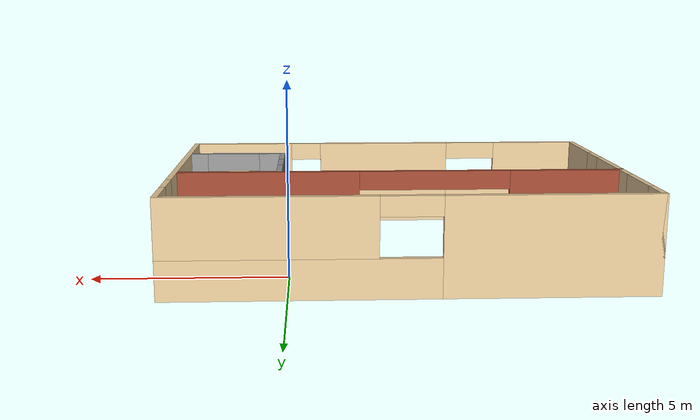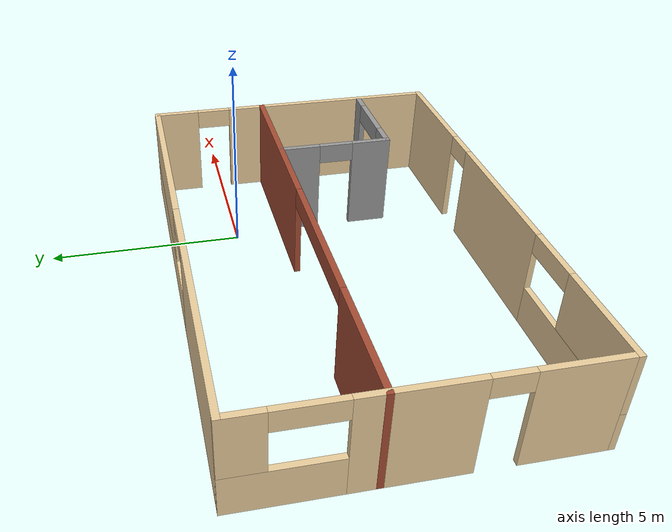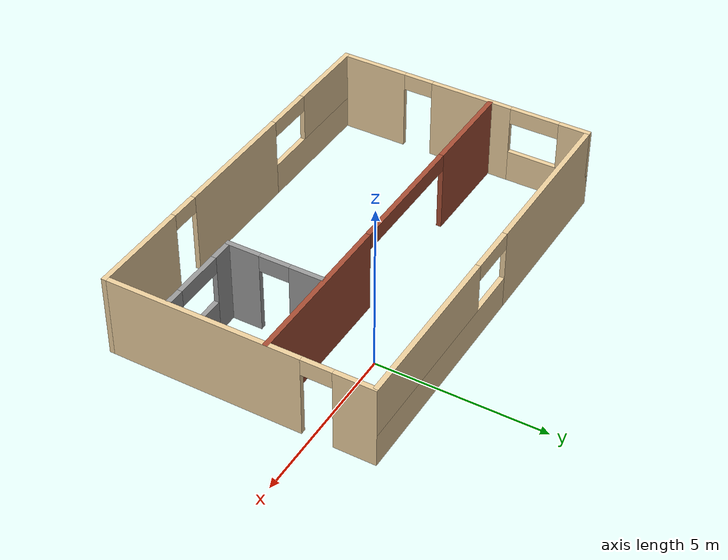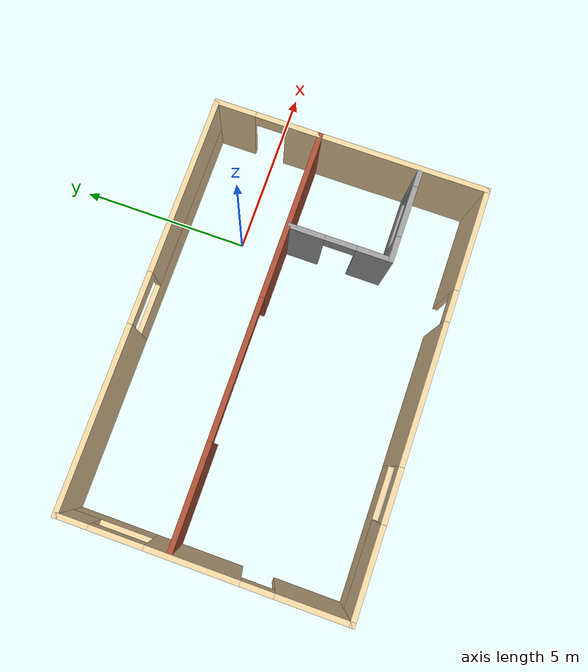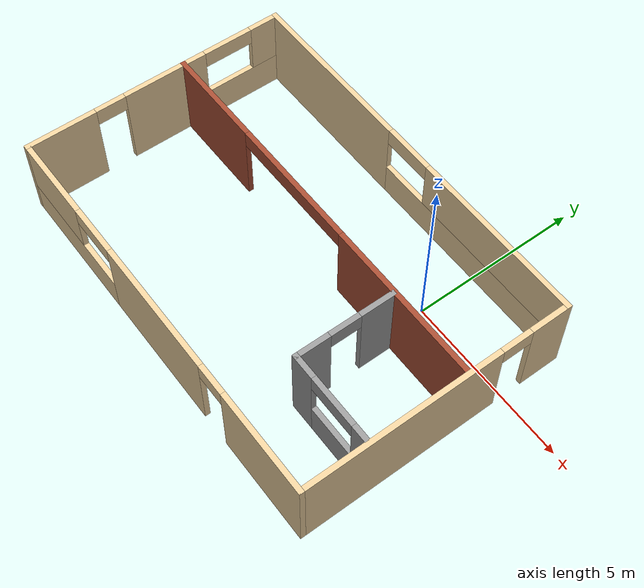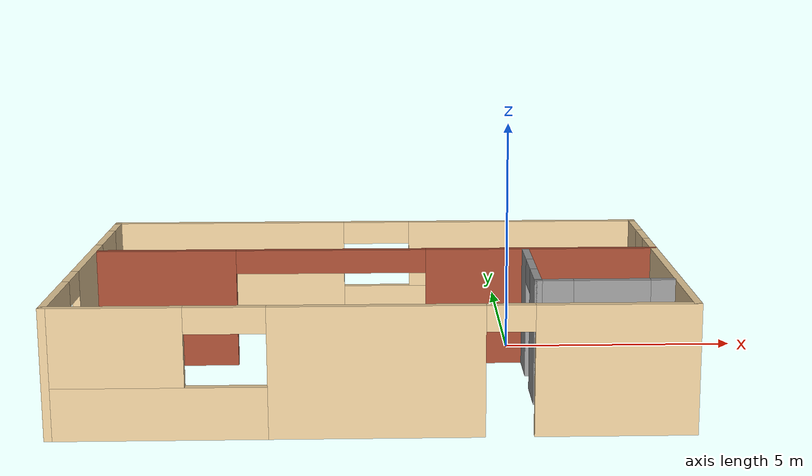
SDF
<?xml version='1.0'?>
<sdf version='1.6'>
  <model name='myBuilding'>
    <pose frame=''>-2.90731 -2.15628 0 0 -0 0</pose>
    <link name='Wall_10'>
      <pose frame=''>4.4883 -2.03352 0 0 -0 0</pose>
      <visual name='Wall_10_Visual_0'>
        <pose frame=''>-0.995451 0 1.25 0 -0 0</pose>
        <geometry>
          <box>
            <size>0.759098 0.15 2.5</size>
          </box>
        </geometry>
        <material>
          <script>
            <uri>file://media/materials/scripts/gazebo.material</uri>
            <name>Gazebo/Grey</name>
          </script>
          <ambient>1 1 1 1</ambient>
        </material>
        <meta>
          <layer>0</layer>
        </meta>
      </visual>
      <collision name='Wall_10_Collision_0'>
        <geometry>
          <box>
            <size>0.759098 0.15 2.5</size>
          </box>
        </geometry>
        <pose frame=''>-0.995451 0 1.25 0 -0 0</pose>
      </collision>
      <visual name='Wall_10_Visual_1'>
        <pose frame=''>0.379549 0 0.5 0 -0 0</pose>
        <geometry>
          <box>
            <size>1.9909 0.15 1</size>
          </box>
        </geometry>
        <material>
          <script>
            <uri>file://media/materials/scripts/gazebo.material</uri>
            <name>Gazebo/Grey</name>
          </script>
          <ambient>1 1 1 1</ambient>
        </material>
        <meta>
          <layer>0</layer>
        </meta>
      </visual>
      <collision name='Wall_10_Collision_1'>
        <geometry>
          <box>
            <size>1.9909 0.15 1</size>
          </box>
        </geometry>
        <pose frame=''>0.379549 0 0.5 0 -0 0</pose>
      </collision>
      <visual name='Wall_10_Visual_2'>
        <pose frame=''>1.12955 0 1.75 0 -0 0</pose>
        <geometry>
          <box>
            <size>0.490902 0.15 1.5</size>
          </box>
        </geometry>
        <material>
          <script>
            <uri>file://media/materials/scripts/gazebo.material</uri>
            <name>Gazebo/Grey</name>
          </script>
          <ambient>1 1 1 1</ambient>
        </material>
        <meta>
          <layer>0</layer>
        </meta>
      </visual>
      <collision name='Wall_10_Collision_2'>
        <geometry>
          <box>
            <size>0.490902 0.15 1.5</size>
          </box>
        </geometry>
        <pose frame=''>1.12955 0 1.75 0 -0 0</pose>
      </collision>
      <visual name='Wall_10_Visual_3'>
        <pose frame=''>0.134098 0 2.25 0 -0 0</pose>
        <geometry>
          <box>
            <size>1.5 0.15 0.5</size>
          </box>
        </geometry>
        <material>
          <script>
            <uri>file://media/materials/scripts/gazebo.material</uri>
            <name>Gazebo/Grey</name>
          </script>
          <ambient>1 1 1 1</ambient>
        </material>
        <meta>
          <layer>0</layer>
        </meta>
      </visual>
      <collision name='Wall_10_Collision_3'>
        <geometry>
          <box>
            <size>1.5 0.15 0.5</size>
          </box>
        </geometry>
        <pose frame=''>0.134098 0 2.25 0 -0 0</pose>
      </collision>
    </link>
    <link name='Wall_2'>
      <pose frame=''>0.000155 3.925 0 0 -0 0</pose>
      <visual name='Wall_2_Visual_0'>
        <pose frame=''>-3.37694 0 1.25 0 -0 0</pose>
        <geometry>
          <box>
            <size>5.24613 0.15 2.5</size>
          </box>
        </geometry>
        <material>
          <script>
            <uri>file://media/materials/scripts/gazebo.material</uri>
            <name>Gazebo/Grey</name>
          </script>
          <ambient>0.921569 0.807843 0.615686 1</ambient>
        </material>
        <meta>
          <layer>0</layer>
        </meta>
      </visual>
      <collision name='Wall_2_Collision_0'>
        <geometry>
          <box>
            <size>5.24613 0.15 2.5</size>
          </box>
        </geometry>
        <pose frame=''>-3.37694 0 1.25 0 -0 0</pose>
      </collision>
      <visual name='Wall_2_Visual_1'>
        <pose frame=''>2.62306 0 0.5 0 -0 0</pose>
        <geometry>
          <box>
            <size>6.75387 0.15 1</size>
          </box>
        </geometry>
        <material>
          <script>
            <uri>file://media/materials/scripts/gazebo.material</uri>
            <name>Gazebo/Grey</name>
          </script>
          <ambient>0.921569 0.807843 0.615686 1</ambient>
        </material>
        <meta>
          <layer>0</layer>
        </meta>
      </visual>
      <collision name='Wall_2_Collision_1'>
        <geometry>
          <box>
            <size>6.75387 0.15 1</size>
          </box>
        </geometry>
        <pose frame=''>2.62306 0 0.5 0 -0 0</pose>
      </collision>
      <visual name='Wall_2_Visual_2'>
        <pose frame=''>3.37306 0 1.75 0 -0 0</pose>
        <geometry>
          <box>
            <size>5.25387 0.15 1.5</size>
          </box>
        </geometry>
        <material>
          <script>
            <uri>file://media/materials/scripts/gazebo.material</uri>
            <name>Gazebo/Grey</name>
          </script>
          <ambient>0.921569 0.807843 0.615686 1</ambient>
        </material>
        <meta>
          <layer>0</layer>
        </meta>
      </visual>
      <collision name='Wall_2_Collision_2'>
        <geometry>
          <box>
            <size>5.25387 0.15 1.5</size>
          </box>
        </geometry>
        <pose frame=''>3.37306 0 1.75 0 -0 0</pose>
      </collision>
      <visual name='Wall_2_Visual_3'>
        <pose frame=''>-0.003875 0 2.25 0 -0 0</pose>
        <geometry>
          <box>
            <size>1.5 0.15 0.5</size>
          </box>
        </geometry>
        <material>
          <script>
            <uri>file://media/materials/scripts/gazebo.material</uri>
            <name>Gazebo/Grey</name>
          </script>
          <ambient>0.921569 0.807843 0.615686 1</ambient>
        </material>
        <meta>
          <layer>0</layer>
        </meta>
      </visual>
      <collision name='Wall_2_Collision_3'>
        <geometry>
          <box>
            <size>1.5 0.15 0.5</size>
          </box>
        </geometry>
        <pose frame=''>-0.003875 0 2.25 0 -0 0</pose>
      </collision>
    </link>
    <link name='Wall_3'>
      <pose frame=''>5.92516 0 0 0 0 -1.5708</pose>
      <visual name='Wall_3_Visual_0'>
        <pose frame=''>-3.38498 0 1.25 0 -0 0</pose>
        <geometry>
          <box>
            <size>1.23003 0.15 2.5</size>
          </box>
        </geometry>
        <material>
          <script>
            <uri>file://media/materials/scripts/gazebo.material</uri>
            <name>Gazebo/Grey</name>
          </script>
          <ambient>0.921569 0.807843 0.615686 1</ambient>
        </material>
        <meta>
          <layer>0</layer>
        </meta>
      </visual>
      <collision name='Wall_3_Collision_0'>
        <geometry>
          <box>
            <size>1.23003 0.15 2.5</size>
          </box>
        </geometry>
        <pose frame=''>-3.38498 0 1.25 0 -0 0</pose>
      </collision>
      <visual name='Wall_3_Visual_1'>
        <pose frame=''>1.06502 0 1.25 0 -0 0</pose>
        <geometry>
          <box>
            <size>5.86997 0.15 2.5</size>
          </box>
        </geometry>
        <material>
          <script>
            <uri>file://media/materials/scripts/gazebo.material</uri>
            <name>Gazebo/Grey</name>
          </script>
          <ambient>0.921569 0.807843 0.615686 1</ambient>
        </material>
        <meta>
          <layer>0</layer>
        </meta>
      </visual>
      <collision name='Wall_3_Collision_1'>
        <geometry>
          <box>
            <size>5.86997 0.15 2.5</size>
          </box>
        </geometry>
        <pose frame=''>1.06502 0 1.25 0 -0 0</pose>
      </collision>
      <visual name='Wall_3_Visual_2'>
        <pose frame=''>-2.31997 0 2.25 0 -0 0</pose>
        <geometry>
          <box>
            <size>0.9 0.15 0.5</size>
          </box>
        </geometry>
        <material>
          <script>
            <uri>file://media/materials/scripts/gazebo.material</uri>
            <name>Gazebo/Grey</name>
          </script>
          <ambient>0.921569 0.807843 0.615686 1</ambient>
        </material>
        <meta>
          <layer>0</layer>
        </meta>
      </visual>
      <collision name='Wall_3_Collision_2'>
        <geometry>
          <box>
            <size>0.9 0.15 0.5</size>
          </box>
        </geometry>
        <pose frame=''>-2.31997 0 2.25 0 -0 0</pose>
      </collision>
    </link>
    <link name='Wall_4'>
      <pose frame=''>0.000155 -3.925 0 0 -0 3.14159</pose>
      <visual name='Wall_4_Visual_0'>
        <pose frame=''>-4.48368 0 1.25 0 -0 0</pose>
        <geometry>
          <box>
            <size>3.03264 0.15 2.5</size>
          </box>
        </geometry>
        <material>
          <script>
            <uri>file://media/materials/scripts/gazebo.material</uri>
            <name>Gazebo/Grey</name>
          </script>
          <ambient>0.921569 0.807843 0.615686 1</ambient>
        </material>
        <meta>
          <layer>0</layer>
        </meta>
      </visual>
      <collision name='Wall_4_Collision_0'>
        <geometry>
          <box>
            <size>3.03264 0.15 2.5</size>
          </box>
        </geometry>
        <pose frame=''>-4.48368 0 1.25 0 -0 0</pose>
      </collision>
      <visual name='Wall_4_Visual_1'>
        <pose frame=''>-0.076733 0 1.25 0 -0 0</pose>
        <geometry>
          <box>
            <size>3.98126 0.15 2.5</size>
          </box>
        </geometry>
        <material>
          <script>
            <uri>file://media/materials/scripts/gazebo.material</uri>
            <name>Gazebo/Grey</name>
          </script>
          <ambient>0.921569 0.807843 0.615686 1</ambient>
        </material>
        <meta>
          <layer>0</layer>
        </meta>
      </visual>
      <collision name='Wall_4_Collision_1'>
        <geometry>
          <box>
            <size>3.98126 0.15 2.5</size>
          </box>
        </geometry>
        <pose frame=''>-0.076733 0 1.25 0 -0 0</pose>
      </collision>
      <visual name='Wall_4_Visual_2'>
        <pose frame=''>3.95695 0 0.5 0 -0 0</pose>
        <geometry>
          <box>
            <size>4.0861 0.15 1</size>
          </box>
        </geometry>
        <material>
          <script>
            <uri>file://media/materials/scripts/gazebo.material</uri>
            <name>Gazebo/Grey</name>
          </script>
          <ambient>0.921569 0.807843 0.615686 1</ambient>
        </material>
        <meta>
          <layer>0</layer>
        </meta>
      </visual>
      <collision name='Wall_4_Collision_2'>
        <geometry>
          <box>
            <size>4.0861 0.15 1</size>
          </box>
        </geometry>
        <pose frame=''>3.95695 0 0.5 0 -0 0</pose>
      </collision>
      <visual name='Wall_4_Visual_3'>
        <pose frame=''>4.70695 0 1.75 0 -0 0</pose>
        <geometry>
          <box>
            <size>2.5861 0.15 1.5</size>
          </box>
        </geometry>
        <material>
          <script>
            <uri>file://media/materials/scripts/gazebo.material</uri>
            <name>Gazebo/Grey</name>
          </script>
          <ambient>0.921569 0.807843 0.615686 1</ambient>
        </material>
        <meta>
          <layer>0</layer>
        </meta>
      </visual>
      <collision name='Wall_4_Collision_3'>
        <geometry>
          <box>
            <size>2.5861 0.15 1.5</size>
          </box>
        </geometry>
        <pose frame=''>4.70695 0 1.75 0 -0 0</pose>
      </collision>
      <visual name='Wall_4_Visual_4'>
        <pose frame=''>-2.51736 0 2.25 0 -0 0</pose>
        <geometry>
          <box>
            <size>0.9 0.15 0.5</size>
          </box>
        </geometry>
        <material>
          <script>
            <uri>file://media/materials/scripts/gazebo.material</uri>
            <name>Gazebo/Grey</name>
          </script>
          <ambient>0.921569 0.807843 0.615686 1</ambient>
        </material>
        <meta>
          <layer>0</layer>
        </meta>
      </visual>
      <collision name='Wall_4_Collision_4'>
        <geometry>
          <box>
            <size>0.9 0.15 0.5</size>
          </box>
        </geometry>
        <pose frame=''>-2.51736 0 2.25 0 -0 0</pose>
      </collision>
      <visual name='Wall_4_Visual_5'>
        <pose frame=''>2.6639 0 2.25 0 -0 0</pose>
        <geometry>
          <box>
            <size>1.5 0.15 0.5</size>
          </box>
        </geometry>
        <material>
          <script>
            <uri>file://media/materials/scripts/gazebo.material</uri>
            <name>Gazebo/Grey</name>
          </script>
          <ambient>0.921569 0.807843 0.615686 1</ambient>
        </material>
        <meta>
          <layer>0</layer>
        </meta>
      </visual>
      <collision name='Wall_4_Collision_5'>
        <geometry>
          <box>
            <size>1.5 0.15 0.5</size>
          </box>
        </geometry>
        <pose frame=''>2.6639 0 2.25 0 -0 0</pose>
      </collision>
    </link>
    <link name='Wall_5'>
      <pose frame=''>-5.92485 0 0 0 -0 1.5708</pose>
      <visual name='Wall_5_Visual_0'>
        <pose frame=''>-2.95016 0 1.25 0 -0 0</pose>
        <geometry>
          <box>
            <size>2.09968 0.15 2.5</size>
          </box>
        </geometry>
        <material>
          <script>
            <uri>file://media/materials/scripts/gazebo.material</uri>
            <name>Gazebo/Grey</name>
          </script>
          <ambient>0.921569 0.807843 0.615686 1</ambient>
        </material>
        <meta>
          <layer>0</layer>
        </meta>
      </visual>
      <collision name='Wall_5_Collision_0'>
        <geometry>
          <box>
            <size>2.09968 0.15 2.5</size>
          </box>
        </geometry>
        <pose frame=''>-2.95016 0 1.25 0 -0 0</pose>
      </collision>
      <visual name='Wall_5_Visual_1'>
        <pose frame=''>0.273258 0 1.25 0 -0 0</pose>
        <geometry>
          <box>
            <size>2.54716 0.15 2.5</size>
          </box>
        </geometry>
        <material>
          <script>
            <uri>file://media/materials/scripts/gazebo.material</uri>
            <name>Gazebo/Grey</name>
          </script>
          <ambient>0.921569 0.807843 0.615686 1</ambient>
        </material>
        <meta>
          <layer>0</layer>
        </meta>
      </visual>
      <collision name='Wall_5_Collision_1'>
        <geometry>
          <box>
            <size>2.54716 0.15 2.5</size>
          </box>
        </geometry>
        <pose frame=''>0.273258 0 1.25 0 -0 0</pose>
      </collision>
      <visual name='Wall_5_Visual_2'>
        <pose frame=''>2.77342 0 0.5 0 -0 0</pose>
        <geometry>
          <box>
            <size>2.45316 0.15 1</size>
          </box>
        </geometry>
        <material>
          <script>
            <uri>file://media/materials/scripts/gazebo.material</uri>
            <name>Gazebo/Grey</name>
          </script>
          <ambient>0.921569 0.807843 0.615686 1</ambient>
        </material>
        <meta>
          <layer>0</layer>
        </meta>
      </visual>
      <collision name='Wall_5_Collision_2'>
        <geometry>
          <box>
            <size>2.45316 0.15 1</size>
          </box>
        </geometry>
        <pose frame=''>2.77342 0 0.5 0 -0 0</pose>
      </collision>
      <visual name='Wall_5_Visual_3'>
        <pose frame=''>3.52342 0 1.75 0 -0 0</pose>
        <geometry>
          <box>
            <size>0.953163 0.15 1.5</size>
          </box>
        </geometry>
        <material>
          <script>
            <uri>file://media/materials/scripts/gazebo.material</uri>
            <name>Gazebo/Grey</name>
          </script>
          <ambient>0.921569 0.807843 0.615686 1</ambient>
        </material>
        <meta>
          <layer>0</layer>
        </meta>
      </visual>
      <collision name='Wall_5_Collision_3'>
        <geometry>
          <box>
            <size>0.953163 0.15 1.5</size>
          </box>
        </geometry>
        <pose frame=''>3.52342 0 1.75 0 -0 0</pose>
      </collision>
      <visual name='Wall_5_Visual_4'>
        <pose frame=''>-1.45032 0 2.25 0 -0 0</pose>
        <geometry>
          <box>
            <size>0.9 0.15 0.5</size>
          </box>
        </geometry>
        <material>
          <script>
            <uri>file://media/materials/scripts/gazebo.material</uri>
            <name>Gazebo/Grey</name>
          </script>
          <ambient>0.921569 0.807843 0.615686 1</ambient>
        </material>
        <meta>
          <layer>0</layer>
        </meta>
      </visual>
      <collision name='Wall_5_Collision_4'>
        <geometry>
          <box>
            <size>0.9 0.15 0.5</size>
          </box>
        </geometry>
        <pose frame=''>-1.45032 0 2.25 0 -0 0</pose>
      </collision>
      <visual name='Wall_5_Visual_5'>
        <pose frame=''>2.29684 0 2.25 0 -0 0</pose>
        <geometry>
          <box>
            <size>1.5 0.15 0.5</size>
          </box>
        </geometry>
        <material>
          <script>
            <uri>file://media/materials/scripts/gazebo.material</uri>
            <name>Gazebo/Grey</name>
          </script>
          <ambient>0.921569 0.807843 0.615686 1</ambient>
        </material>
        <meta>
          <layer>0</layer>
        </meta>
      </visual>
      <collision name='Wall_5_Collision_5'>
        <geometry>
          <box>
            <size>1.5 0.15 0.5</size>
          </box>
        </geometry>
        <pose frame=''>2.29684 0 2.25 0 -0 0</pose>
      </collision>
    </link>
    <link name='Wall_7'>
      <pose frame=''>-0.000156 0.88587 0 0 -0 0</pose>
      <visual name='Wall_7_Visual_0'>
        <pose frame=''>-4.46439 0 1.25 0 -0 0</pose>
        <geometry>
          <box>
            <size>3.07121 0.15 2.5</size>
          </box>
        </geometry>
        <material>
          <script>
            <uri>file://media/materials/scripts/gazebo.material</uri>
            <name>Gazebo/Bricks</name>
          </script>
          <ambient>1 1 1 1</ambient>
        </material>
        <meta>
          <layer>0</layer>
        </meta>
      </visual>
      <collision name='Wall_7_Collision_0'>
        <geometry>
          <box>
            <size>3.07121 0.15 2.5</size>
          </box>
        </geometry>
        <pose frame=''>-4.46439 0 1.25 0 -0 0</pose>
      </collision>
      <visual name='Wall_7_Visual_1'>
        <pose frame=''>3.53561 0 1.25 0 -0 0</pose>
        <geometry>
          <box>
            <size>4.92879 0.15 2.5</size>
          </box>
        </geometry>
        <material>
          <script>
            <uri>file://media/materials/scripts/gazebo.material</uri>
            <name>Gazebo/Bricks</name>
          </script>
          <ambient>1 1 1 1</ambient>
        </material>
        <meta>
          <layer>0</layer>
        </meta>
      </visual>
      <collision name='Wall_7_Collision_1'>
        <geometry>
          <box>
            <size>4.92879 0.15 2.5</size>
          </box>
        </geometry>
        <pose frame=''>3.53561 0 1.25 0 -0 0</pose>
      </collision>
      <visual name='Wall_7_Visual_2'>
        <pose frame=''>-0.928789 0 2.25 0 -0 0</pose>
        <geometry>
          <box>
            <size>4 0.15 0.5</size>
          </box>
        </geometry>
        <material>
          <script>
            <uri>file://media/materials/scripts/gazebo.material</uri>
            <name>Gazebo/Bricks</name>
          </script>
          <ambient>1 1 1 1</ambient>
        </material>
        <meta>
          <layer>0</layer>
        </meta>
      </visual>
      <collision name='Wall_7_Collision_2'>
        <geometry>
          <box>
            <size>4 0.15 0.5</size>
          </box>
        </geometry>
        <pose frame=''>-0.928789 0 2.25 0 -0 0</pose>
      </collision>
    </link>
    <link name='Wall_9'>
      <pose frame=''>3.1883 -0.608521 0 0 0 -1.5708</pose>
      <visual name='Wall_9_Visual_0'>
        <pose frame=''>-0.970451 0 1.25 0 -0 0</pose>
        <geometry>
          <box>
            <size>1.0591 0.15 2.5</size>
          </box>
        </geometry>
        <material>
          <script>
            <uri>file://media/materials/scripts/gazebo.material</uri>
            <name>Gazebo/Grey</name>
          </script>
          <ambient>1 1 1 1</ambient>
        </material>
        <meta>
          <layer>0</layer>
        </meta>
      </visual>
      <collision name='Wall_9_Collision_0'>
        <geometry>
          <box>
            <size>1.0591 0.15 2.5</size>
          </box>
        </geometry>
        <pose frame=''>-0.970451 0 1.25 0 -0 0</pose>
      </collision>
      <visual name='Wall_9_Visual_1'>
        <pose frame=''>0.979549 0 1.25 0 -0 0</pose>
        <geometry>
          <box>
            <size>1.0409 0.15 2.5</size>
          </box>
        </geometry>
        <material>
          <script>
            <uri>file://media/materials/scripts/gazebo.material</uri>
            <name>Gazebo/Grey</name>
          </script>
          <ambient>1 1 1 1</ambient>
        </material>
        <meta>
          <layer>0</layer>
        </meta>
      </visual>
      <collision name='Wall_9_Collision_1'>
        <geometry>
          <box>
            <size>1.0409 0.15 2.5</size>
          </box>
        </geometry>
        <pose frame=''>0.979549 0 1.25 0 -0 0</pose>
      </collision>
      <visual name='Wall_9_Visual_2'>
        <pose frame=''>0.009098 0 2.25 0 -0 0</pose>
        <geometry>
          <box>
            <size>0.9 0.15 0.5</size>
          </box>
        </geometry>
        <material>
          <script>
            <uri>file://media/materials/scripts/gazebo.material</uri>
            <name>Gazebo/Grey</name>
          </script>
          <ambient>1 1 1 1</ambient>
        </material>
        <meta>
          <layer>0</layer>
        </meta>
      </visual>
      <collision name='Wall_9_Collision_2'>
        <geometry>
          <box>
            <size>0.9 0.15 0.5</size>
          </box>
        </geometry>
        <pose frame=''>0.009098 0 2.25 0 -0 0</pose>
      </collision>
    </link>
    <static>1</static>
  </model>
</sdf>
